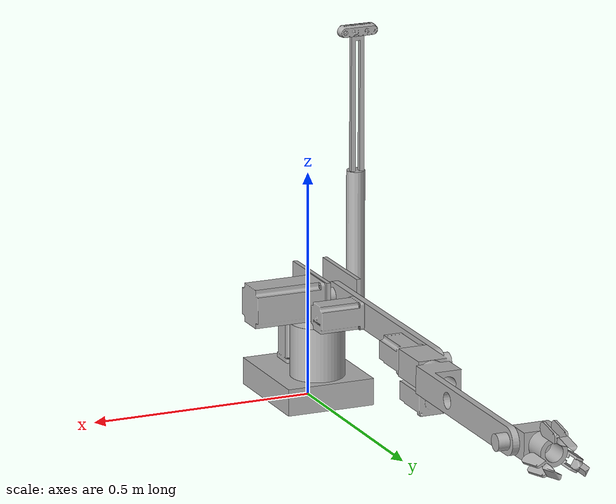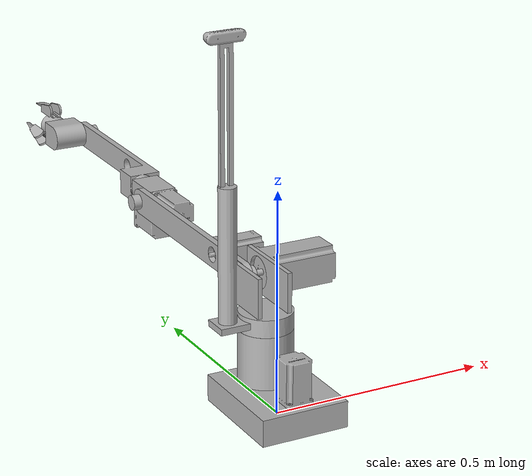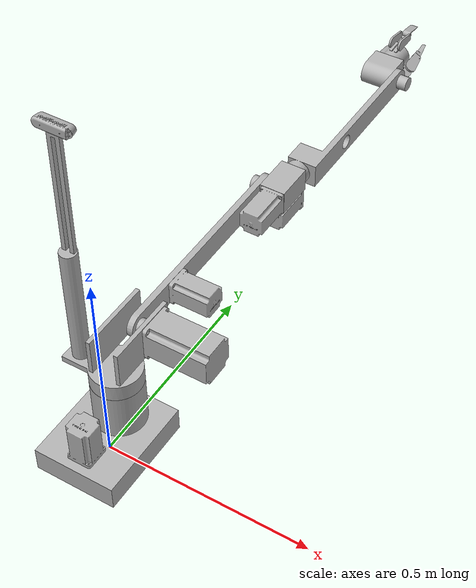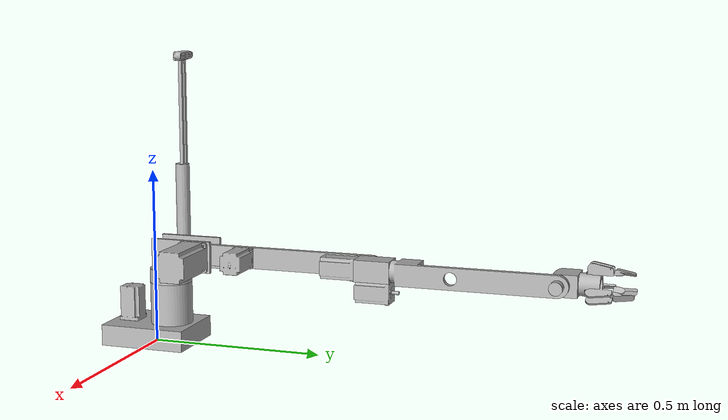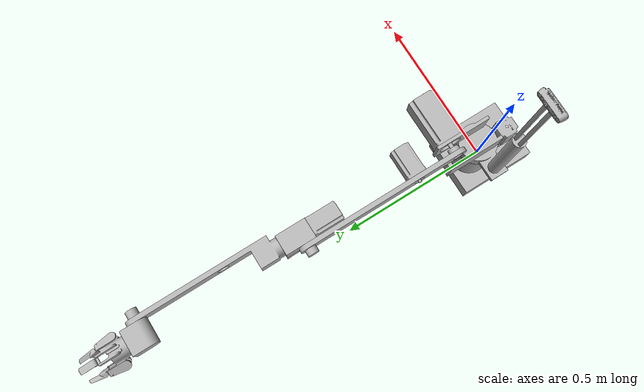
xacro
<?xml version="1.0" ?>
<robot name="arm_export" xmlns:xacro="http://www.ros.org/wiki/xacro">

<xacro:include filename="$(find arm_export_description)/urdf/materials.xacro" />
<xacro:include filename="$(find arm_export_description)/urdf/arm_export.trans" />
<xacro:include filename="$(find arm_export_description)/urdf/arm_export.gazebo" />
<link name="base_link">
  <inertial>
    <origin rpy="0 0 0" xyz="-9.029061793754004e-14 0.016476818393225144 0.07021749351752887"/>
    <mass value="2.9829690964186772"/>
    <inertia ixx="0.024074" ixy="-0.0" ixz="-0.0" iyy="0.017973" iyz="-0.002884" izz="0.02919"/>
  </inertial>
  <visual>
    <origin rpy="0 0 0" xyz="0 0 0"/>
    <geometry>
      <mesh filename="package://arm_export_description/meshes/base_link.stl" scale="0.001 0.001 0.001"/>
    </geometry>
    <material name="silver"/>
  </visual>
  <collision>
    <origin rpy="0 0 0" xyz="0 0 0"/>
    <geometry>
      <mesh filename="package://arm_export_description/meshes/base_link.stl" scale="0.001 0.001 0.001"/>
    </geometry>
  </collision>
</link>

<link name="stepper_joint_1">
  <inertial>
    <origin rpy="0 0 0" xyz="0.0075000000000001316 2.7755575615628914e-17 -1.305622276959184e-13"/>
    <mass value="0.03498948817935604"/>
    <inertia ixx="7e-06" ixy="0.0" ixz="-0.0" iyy="4e-06" iyz="-0.0" izz="4e-06"/>
  </inertial>
  <visual>
    <origin rpy="0 0 0" xyz="-0.00348 -0.14 -0.265"/>
    <geometry>
      <mesh filename="package://arm_export_description/meshes/stepper_joint_1.stl" scale="0.001 0.001 0.001"/>
    </geometry>
    <material name="silver"/>
  </visual>
  <collision>
    <origin rpy="0 0 0" xyz="-0.00348 -0.14 -0.265"/>
    <geometry>
      <mesh filename="package://arm_export_description/meshes/stepper_joint_1.stl" scale="0.001 0.001 0.001"/>
    </geometry>
  </collision>
</link>

<link name="link_1_1">
  <inertial>
    <origin rpy="0 0 0" xyz="-0.007499999999999868 0.26148206616544517 0.0"/>
    <mass value="1.2422891158221263"/>
    <inertia ixx="0.03033" ixy="0.0" ixz="0.0" iyy="0.000414" iyz="-0.0" izz="0.029962"/>
  </inertial>
  <visual>
    <origin rpy="0 0 0" xyz="-0.00348 -0.14 -0.265"/>
    <geometry>
      <mesh filename="package://arm_export_description/meshes/link_1_1.stl" scale="0.001 0.001 0.001"/>
    </geometry>
    <material name="silver"/>
  </visual>
  <collision>
    <origin rpy="0 0 0" xyz="-0.00348 -0.14 -0.265"/>
    <geometry>
      <mesh filename="package://arm_export_description/meshes/link_1_1.stl" scale="0.001 0.001 0.001"/>
    </geometry>
  </collision>
</link>

<link name="link_3_1">
  <inertial>
    <origin rpy="0 0 0" xyz="0.02499852381758487 0.17692221361514127 0.0"/>
    <mass value="1.5478777520934175"/>
    <inertia ixx="0.032303" ixy="-0.002603" ixz="0.0" iyy="0.001209" iyz="0.0" izz="0.032482"/>
  </inertial>
  <visual>
    <origin rpy="0 0 0" xyz="-0.03848 -0.725 -0.265"/>
    <geometry>
      <mesh filename="package://arm_export_description/meshes/link_3_1.stl" scale="0.001 0.001 0.001"/>
    </geometry>
    <material name="silver"/>
  </visual>
  <collision>
    <origin rpy="0 0 0" xyz="-0.03848 -0.725 -0.265"/>
    <geometry>
      <mesh filename="package://arm_export_description/meshes/link_3_1.stl" scale="0.001 0.001 0.001"/>
    </geometry>
  </collision>
</link>

<link name="link_end_1">
  <inertial>
    <origin rpy="0 0 0" xyz="-0.03379678599677132 0.011579118062804428 5.551115123125783e-17"/>
    <mass value="1.063293416063342"/>
    <inertia ixx="0.000747" ixy="7.6e-05" ixz="0.0" iyy="0.00115" iyz="-0.0" izz="0.001353"/>
  </inertial>
  <visual>
    <origin rpy="0 0 0" xyz="-0.06848 -1.18 -0.265"/>
    <geometry>
      <mesh filename="package://arm_export_description/meshes/link_end_1.stl" scale="0.001 0.001 0.001"/>
    </geometry>
    <material name="silver"/>
  </visual>
  <collision>
    <origin rpy="0 0 0" xyz="-0.06848 -1.18 -0.265"/>
    <geometry>
      <mesh filename="package://arm_export_description/meshes/link_end_1.stl" scale="0.001 0.001 0.001"/>
    </geometry>
  </collision>
</link>

<link name="NEMA_24_3_1">
  <inertial>
    <origin rpy="0 0 0" xyz="0.04795079485405239 7.655954098462203e-08 2.5568133203979215e-06"/>
    <mass value="2.4982959259379585"/>
    <inertia ixx="0.001293" ixy="-0.0" ixz="-0.0" iyy="0.002718" iyz="0.0" izz="0.002718"/>
  </inertial>
  <visual>
    <origin rpy="0 0 0" xyz="-0.00348 -0.2775 -0.265"/>
    <geometry>
      <mesh filename="package://arm_export_description/meshes/NEMA_24_3_1.stl" scale="0.001 0.001 0.001"/>
    </geometry>
    <material name="silver"/>
  </visual>
  <collision>
    <origin rpy="0 0 0" xyz="-0.00348 -0.2775 -0.265"/>
    <geometry>
      <mesh filename="package://arm_export_description/meshes/NEMA_24_3_1.stl" scale="0.001 0.001 0.001"/>
    </geometry>
  </collision>
</link>

<link name="NEMA_24_1_1">
  <inertial>
    <origin rpy="0 0 0" xyz="7.65595409013553e-08 -0.04795079485405229 2.5568133203979215e-06"/>
    <mass value="2.4982959259379585"/>
    <inertia ixx="0.002718" ixy="0.0" ixz="0.0" iyy="0.001293" iyz="0.0" izz="0.002718"/>
  </inertial>
  <visual>
    <origin rpy="0 0 0" xyz="-0.03848 -0.625 -0.265"/>
    <geometry>
      <mesh filename="package://arm_export_description/meshes/NEMA_24_1_1.stl" scale="0.001 0.001 0.001"/>
    </geometry>
    <material name="silver"/>
  </visual>
  <collision>
    <origin rpy="0 0 0" xyz="-0.03848 -0.625 -0.265"/>
    <geometry>
      <mesh filename="package://arm_export_description/meshes/NEMA_24_1_1.stl" scale="0.001 0.001 0.001"/>
    </geometry>
  </collision>
</link>

<link name="link_2_1">
  <inertial>
    <origin rpy="0 0 0" xyz="0.026213672668365277 0.017799785433927795 0.0"/>
    <mass value="0.8743627585315773"/>
    <inertia ixx="0.000992" ixy="-8.4e-05" ixz="0.0" iyy="0.000864" iyz="-0.0" izz="0.001253"/>
  </inertial>
  <visual>
    <origin rpy="0 0 0" xyz="-0.00348 -0.655 -0.265"/>
    <geometry>
      <mesh filename="package://arm_export_description/meshes/link_2_1.stl" scale="0.001 0.001 0.001"/>
    </geometry>
    <material name="silver"/>
  </visual>
  <collision>
    <origin rpy="0 0 0" xyz="-0.00348 -0.655 -0.265"/>
    <geometry>
      <mesh filename="package://arm_export_description/meshes/link_2_1.stl" scale="0.001 0.001 0.001"/>
    </geometry>
  </collision>
</link>

<link name="NEMA_24_4_1">
  <inertial>
    <origin rpy="0 0 0" xyz="7.655954077029509e-08 2.5568133205228216e-06 0.047950794854052264"/>
    <mass value="2.4982959259379585"/>
    <inertia ixx="0.002718" ixy="0.0" ixz="-0.0" iyy="0.002718" iyz="-0.0" izz="0.001293"/>
  </inertial>
  <visual>
    <origin rpy="0 0 0" xyz="0.0 0.075 -0.06"/>
    <geometry>
      <mesh filename="package://arm_export_description/meshes/NEMA_24_4_1.stl" scale="0.001 0.001 0.001"/>
    </geometry>
    <material name="silver"/>
  </visual>
  <collision>
    <origin rpy="0 0 0" xyz="0.0 0.075 -0.06"/>
    <geometry>
      <mesh filename="package://arm_export_description/meshes/NEMA_24_4_1.stl" scale="0.001 0.001 0.001"/>
    </geometry>
  </collision>
</link>

<link name="NEMA_24_2_1">
  <inertial>
    <origin rpy="0 0 0" xyz="-7.655954063073844e-08 0.0009492051459477624 -0.02980255681332042"/>
    <mass value="2.4982959259379585"/>
    <inertia ixx="0.002718" ixy="-0.0" ixz="0.0" iyy="0.001293" iyz="-0.0" izz="0.002718"/>
  </inertial>
  <visual>
    <origin rpy="0 0 0" xyz="-0.03598 -0.675 -0.235"/>
    <geometry>
      <mesh filename="package://arm_export_description/meshes/NEMA_24_2_1.stl" scale="0.001 0.001 0.001"/>
    </geometry>
    <material name="silver"/>
  </visual>
  <collision>
    <origin rpy="0 0 0" xyz="-0.03598 -0.675 -0.235"/>
    <geometry>
      <mesh filename="package://arm_export_description/meshes/NEMA_24_2_1.stl" scale="0.001 0.001 0.001"/>
    </geometry>
  </collision>
</link>

<link name="gripper_base_1">
  <inertial>
    <origin rpy="0 0 0" xyz="-8.738046848588699e-10 0.03673655788581853 1.1906842178888155e-10"/>
    <mass value="1.1315792783817065"/>
    <inertia ixx="0.001126" ixy="0.0" ixz="-0.0" iyy="0.001318" iyz="-0.0" izz="0.001126"/>
  </inertial>
  <visual>
    <origin rpy="0 0 0" xyz="-0.02848 -1.23 -0.265"/>
    <geometry>
      <mesh filename="package://arm_export_description/meshes/gripper_base_1.stl" scale="0.001 0.001 0.001"/>
    </geometry>
    <material name="silver"/>
  </visual>
  <collision>
    <origin rpy="0 0 0" xyz="-0.02848 -1.23 -0.265"/>
    <geometry>
      <mesh filename="package://arm_export_description/meshes/gripper_base_1.stl" scale="0.001 0.001 0.001"/>
    </geometry>
  </collision>
</link>

<link name="gripper_finger_1_1">
  <inertial>
    <origin rpy="0 0 0" xyz="-3.283081410898614e-10 0.02297996859066398 0.004865333770813995"/>
    <mass value="0.07511526055866109"/>
    <inertia ixx="1.7e-05" ixy="0.0" ixz="-0.0" iyy="3e-06" iyz="-0.0" izz="1.8e-05"/>
  </inertial>
  <visual>
    <origin rpy="0 0 0" xyz="-0.02848 -1.3145 -0.2975"/>
    <geometry>
      <mesh filename="package://arm_export_description/meshes/gripper_finger_1_1.stl" scale="0.001 0.001 0.001"/>
    </geometry>
    <material name="silver"/>
  </visual>
  <collision>
    <origin rpy="0 0 0" xyz="-0.02848 -1.3145 -0.2975"/>
    <geometry>
      <mesh filename="package://arm_export_description/meshes/gripper_finger_1_1.stl" scale="0.001 0.001 0.001"/>
    </geometry>
  </collision>
</link>

<link name="gripper_finger_2_1">
  <inertial>
    <origin rpy="0 0 0" xyz="-0.004213328102255339 0.02297996859066398 -0.002432667169730368"/>
    <mass value="0.07511526055866109"/>
    <inertia ixx="1.8e-05" ixy="0.0" ixz="0.0" iyy="3e-06" iyz="0.0" izz="1.8e-05"/>
  </inertial>
  <visual>
    <origin rpy="0 0 0" xyz="-0.000334 -1.3145 -0.24875"/>
    <geometry>
      <mesh filename="package://arm_export_description/meshes/gripper_finger_2_1.stl" scale="0.001 0.001 0.001"/>
    </geometry>
    <material name="silver"/>
  </visual>
  <collision>
    <origin rpy="0 0 0" xyz="-0.000334 -1.3145 -0.24875"/>
    <geometry>
      <mesh filename="package://arm_export_description/meshes/gripper_finger_2_1.stl" scale="0.001 0.001 0.001"/>
    </geometry>
  </collision>
</link>

<link name="gripper_finger_3_1">
  <inertial>
    <origin rpy="0 0 0" xyz="0.004213328299858425 0.02297996859066398 -0.0024326668274720076"/>
    <mass value="0.07511526055866109"/>
    <inertia ixx="1.8e-05" ixy="-0.0" ixz="-0.0" iyy="3e-06" iyz="0.0" izz="1.8e-05"/>
  </inertial>
  <visual>
    <origin rpy="0 0 0" xyz="-0.056626 -1.3145 -0.24875"/>
    <geometry>
      <mesh filename="package://arm_export_description/meshes/gripper_finger_3_1.stl" scale="0.001 0.001 0.001"/>
    </geometry>
    <material name="silver"/>
  </visual>
  <collision>
    <origin rpy="0 0 0" xyz="-0.056626 -1.3145 -0.24875"/>
    <geometry>
      <mesh filename="package://arm_export_description/meshes/gripper_finger_3_1.stl" scale="0.001 0.001 0.001"/>
    </geometry>
  </collision>
</link>

<link name="base_turnable_1">
  <inertial>
    <origin rpy="0 0 0" xyz="-0.019680888861266014 0.005428549860960613 0.023506450840144716"/>
    <mass value="6.27904528107532"/>
    <inertia ixx="0.109757" ixy="-0.000233" ixz="0.021421" iyy="0.115631" iyz="-0.002428" izz="0.018856"/>
  </inertial>
  <visual>
    <origin rpy="0 0 0" xyz="0.0 -0.05 -0.18"/>
    <geometry>
      <mesh filename="package://arm_export_description/meshes/base_turnable_1.stl" scale="0.001 0.001 0.001"/>
    </geometry>
    <material name="silver"/>
  </visual>
  <collision>
    <origin rpy="0 0 0" xyz="0.0 -0.05 -0.18"/>
    <geometry>
      <mesh filename="package://arm_export_description/meshes/base_turnable_1.stl" scale="0.001 0.001 0.001"/>
    </geometry>
  </collision>
</link>

<link name="NEMA_34_v2_1">
  <inertial>
    <origin rpy="0 0 0" xyz="0.07651505285685478 -1.1102230246251565e-16 3.221002922548788e-06"/>
    <mass value="5.316520087759884"/>
    <inertia ixx="0.005731" ixy="0.0" ixz="2e-06" iyy="0.014133" iyz="0.0" izz="0.014133"/>
  </inertial>
  <visual>
    <origin rpy="0 0 0" xyz="-0.04 -0.14 -0.265"/>
    <geometry>
      <mesh filename="package://arm_export_description/meshes/NEMA_34_v2_1.stl" scale="0.001 0.001 0.001"/>
    </geometry>
    <material name="silver"/>
  </visual>
  <collision>
    <origin rpy="0 0 0" xyz="-0.04 -0.14 -0.265"/>
    <geometry>
      <mesh filename="package://arm_export_description/meshes/NEMA_34_v2_1.stl" scale="0.001 0.001 0.001"/>
    </geometry>
  </collision>
</link>

<link name="RealSense_Camera_1">
  <inertial>
    <origin rpy="0 0 0" xyz="-0.0010696020063957895 0.0010440004277678036 0.01201138007609115"/>
    <mass value="0.2739287989936542"/>
    <inertia ixx="2.6e-05" ixy="-2e-06" ixz="0.0" iyy="0.000177" iyz="0.0" izz="0.000178"/>
  </inertial>
  <visual>
    <origin rpy="0 0 0" xyz="0.09 -0.055 -0.809827"/>
    <geometry>
      <mesh filename="package://arm_export_description/meshes/RealSense_Camera_1.stl" scale="0.001 0.001 0.001"/>
    </geometry>
    <material name="silver"/>
  </visual>
  <collision>
    <origin rpy="0 0 0" xyz="0.09 -0.055 -0.809827"/>
    <geometry>
      <mesh filename="package://arm_export_description/meshes/RealSense_Camera_1.stl" scale="0.001 0.001 0.001"/>
    </geometry>
  </collision>
</link>

<joint name="Rigid18" type="fixed">
  <origin rpy="0 0 0" xyz="-0.03652 0.0 0.0"/>
  <parent link="NEMA_34_v2_1"/>
  <child link="stepper_joint_1"/>
</joint>

<joint name="link_1_joint" type="continuous">
  <origin rpy="0 0 0" xyz="0.0 0.0 0.0"/>
  <parent link="stepper_joint_1"/>
  <child link="link_1_1"/>
  <axis xyz="-1.0 0.0 0.0"/>
</joint>

<joint name="link_3_joint" type="continuous">
  <origin rpy="0 0 0" xyz="0.035 0.07 0.0"/>
  <parent link="link_2_1"/>
  <child link="link_3_1"/>
  <axis xyz="-0.0 -1.0 -0.0"/>
</joint>

<joint name="link_end_joint" type="continuous">
  <origin rpy="0 0 0" xyz="0.03 0.455 0.0"/>
  <parent link="link_3_1"/>
  <child link="link_end_1"/>
  <axis xyz="1.0 0.0 -0.0"/>
</joint>

<joint name="Rigid34" type="fixed">
  <origin rpy="0 0 0" xyz="0.0 0.1375 0.0"/>
  <parent link="link_1_1"/>
  <child link="NEMA_24_3_1"/>
</joint>

<joint name="Rigid35" type="fixed">
  <origin rpy="0 0 0" xyz="0.035 -0.03 0.0"/>
  <parent link="link_2_1"/>
  <child link="NEMA_24_1_1"/>
</joint>

<joint name="link_2_joint" type="continuous">
  <origin rpy="0 0 0" xyz="0.0 0.515 0.0"/>
  <parent link="link_1_1"/>
  <child link="link_2_1"/>
  <axis xyz="-1.0 0.0 0.0"/>
</joint>

<joint name="Rigid38" type="fixed">
  <origin rpy="0 0 0" xyz="0.0 -0.075 0.06"/>
  <parent link="base_link"/>
  <child link="NEMA_24_4_1"/>
</joint>

<joint name="Rigid42" type="fixed">
  <origin rpy="0 0 0" xyz="0.0325 0.02 -0.03"/>
  <parent link="link_2_1"/>
  <child link="NEMA_24_2_1"/>
</joint>

<joint name="Rigid47" type="fixed">
  <origin rpy="0 0 0" xyz="-0.04 0.05 0.0"/>
  <parent link="link_end_1"/>
  <child link="gripper_base_1"/>
</joint>

<joint name="finger_1_joint" type="continuous">
  <origin rpy="0 0 0" xyz="0.0 0.0845 0.0325"/>
  <parent link="gripper_base_1"/>
  <child link="gripper_finger_1_1"/>
  <axis xyz="1.0 0.0 -0.0"/>
</joint>

<joint name="finger_3_joint" type="continuous">
  <origin rpy="0 0 0" xyz="-0.028146 0.0845 -0.01625"/>
  <parent link="gripper_base_1"/>
  <child link="gripper_finger_2_1"/>
  <axis xyz="-0.5 -0.0 0.866025"/>
</joint>

<joint name="finger_2_joint" type="continuous">
  <origin rpy="0 0 0" xyz="0.028146 0.0845 -0.01625"/>
  <parent link="gripper_base_1"/>
  <child link="gripper_finger_3_1"/>
  <axis xyz="-0.5 0.0 -0.866025"/>
</joint>

<joint name="arm_base_joint" type="continuous">
  <origin rpy="0 0 0" xyz="0.0 0.05 0.18"/>
  <parent link="base_link"/>
  <child link="base_turnable_1"/>
  <axis xyz="0.0 0.0 -1.0"/>
</joint>

<joint name="Rigid52" type="fixed">
  <origin rpy="0 0 0" xyz="0.04 0.09 0.085"/>
  <parent link="base_turnable_1"/>
  <child link="NEMA_34_v2_1"/>
</joint>

<joint name="camera_revolute" type="continuous">
  <origin rpy="0 0 0" xyz="-0.09 0.005 0.629827"/>
  <parent link="base_turnable_1"/>
  <child link="RealSense_Camera_1"/>
  <axis xyz="0.0 0.0 -1.0"/>
</joint>

</robot>

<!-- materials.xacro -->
<robot name="arm_export" xmlns:xacro="http://www.ros.org/wiki/xacro" >

<material name="silver">
  <color rgba="0.700 0.700 0.700 1.000"/>
</material>

</robot>

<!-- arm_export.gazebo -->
<robot name="arm_export" xmlns:xacro="http://www.ros.org/wiki/xacro" >

<xacro:property name="body_color" value="Gazebo/Silver" />

<gazebo>
  <plugin filename="libgazebo_ros_control.so" name="gazebo_ros_control">
  <robotNamespace>/arm_export</robotNamespace>
  <robotSimType>gazebo_ros_control/DefaultRobotHWSim</robotSimType>
  </plugin>
</gazebo>

<gazebo reference="base_link">
  <material>${body_color}</material>
  <mu1>0.2</mu1>
  <mu2>0.2</mu2>
  <selfCollide>true</selfCollide>
  <gravity>true</gravity>
</gazebo>

<gazebo reference="stepper_joint_1">
  <material>${body_color}</material>
  <mu1>0.2</mu1>
  <mu2>0.2</mu2>
  <selfCollide>true</selfCollide>
</gazebo>

<gazebo reference="link_1_1">
  <material>${body_color}</material>
  <mu1>0.2</mu1>
  <mu2>0.2</mu2>
  <selfCollide>true</selfCollide>
</gazebo>

<gazebo reference="link_3_1">
  <material>${body_color}</material>
  <mu1>0.2</mu1>
  <mu2>0.2</mu2>
  <selfCollide>true</selfCollide>
</gazebo>

<gazebo reference="link_end_1">
  <material>${body_color}</material>
  <mu1>0.2</mu1>
  <mu2>0.2</mu2>
  <selfCollide>true</selfCollide>
</gazebo>

<gazebo reference="NEMA_24_3_1">
  <material>${body_color}</material>
  <mu1>0.2</mu1>
  <mu2>0.2</mu2>
  <selfCollide>true</selfCollide>
</gazebo>

<gazebo reference="NEMA_24_1_1">
  <material>${body_color}</material>
  <mu1>0.2</mu1>
  <mu2>0.2</mu2>
  <selfCollide>true</selfCollide>
</gazebo>

<gazebo reference="link_2_1">
  <material>${body_color}</material>
  <mu1>0.2</mu1>
  <mu2>0.2</mu2>
  <selfCollide>true</selfCollide>
</gazebo>

<gazebo reference="NEMA_24_4_1">
  <material>${body_color}</material>
  <mu1>0.2</mu1>
  <mu2>0.2</mu2>
  <selfCollide>true</selfCollide>
</gazebo>

<gazebo reference="NEMA_24_2_1">
  <material>${body_color}</material>
  <mu1>0.2</mu1>
  <mu2>0.2</mu2>
  <selfCollide>true</selfCollide>
</gazebo>

<gazebo reference="gripper_base_1">
  <material>${body_color}</material>
  <mu1>0.2</mu1>
  <mu2>0.2</mu2>
  <selfCollide>true</selfCollide>
</gazebo>

<gazebo reference="gripper_finger_1_1">
  <material>${body_color}</material>
  <mu1>0.2</mu1>
  <mu2>0.2</mu2>
  <selfCollide>true</selfCollide>
</gazebo>

<gazebo reference="gripper_finger_2_1">
  <material>${body_color}</material>
  <mu1>0.2</mu1>
  <mu2>0.2</mu2>
  <selfCollide>true</selfCollide>
</gazebo>

<gazebo reference="gripper_finger_3_1">
  <material>${body_color}</material>
  <mu1>0.2</mu1>
  <mu2>0.2</mu2>
  <selfCollide>true</selfCollide>
</gazebo>

<gazebo reference="base_turnable_1">
  <material>${body_color}</material>
  <mu1>0.2</mu1>
  <mu2>0.2</mu2>
  <selfCollide>true</selfCollide>
</gazebo>

<gazebo reference="NEMA_34_v2_1">
  <material>${body_color}</material>
  <mu1>0.2</mu1>
  <mu2>0.2</mu2>
  <selfCollide>true</selfCollide>
</gazebo>

<gazebo reference="RealSense_Camera_1">
  <material>${body_color}</material>
  <mu1>0.2</mu1>
  <mu2>0.2</mu2>
  <selfCollide>true</selfCollide>
</gazebo>

</robot>
